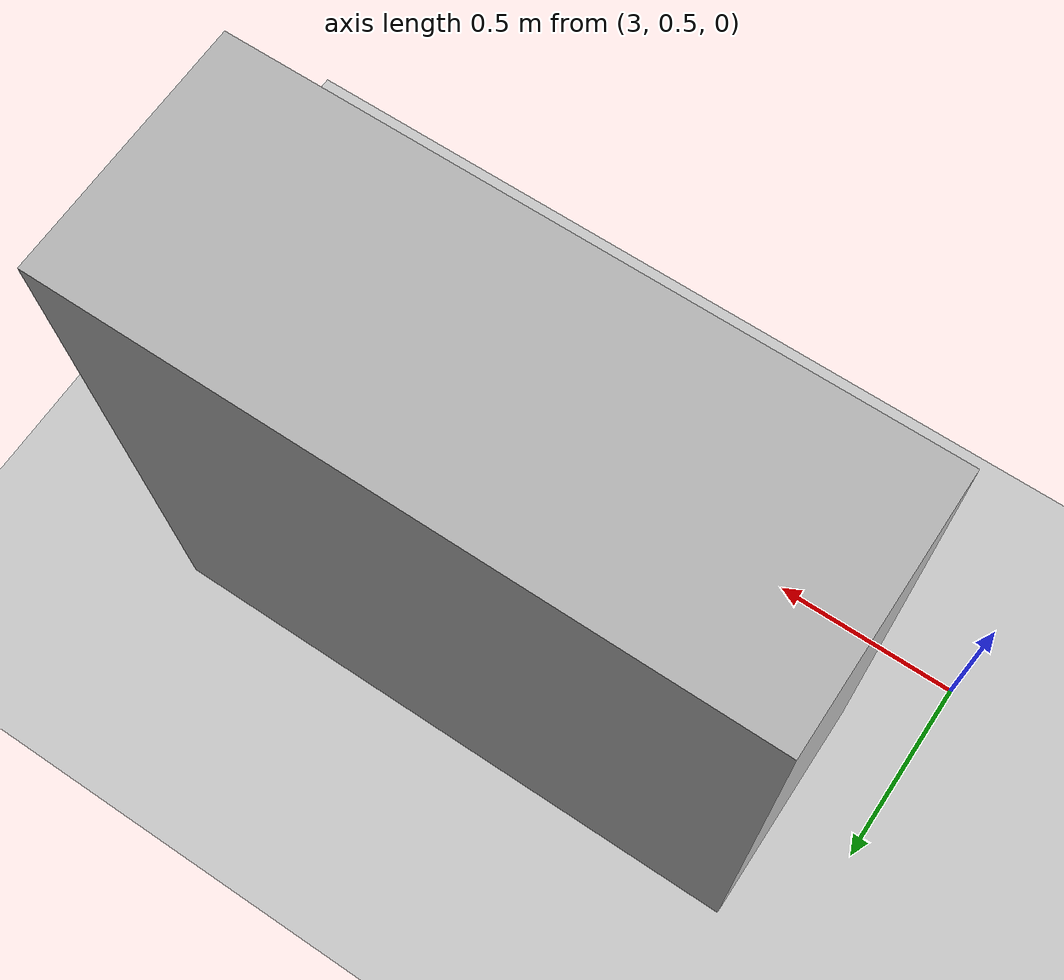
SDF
<?xml version="1.0"?>
<sdf version="1.9"><world name="classroom_corridor"><plugin filename="gz-sim-physics-system" name="gz::sim::systems::Physics"/><plugin filename="gz-sim-scene-broadcaster-system" name="gz::sim::systems::SceneBroadcaster"/><include><uri>model://sun</uri></include><include><uri>model://ground_plane</uri></include><model name="student_group"><static>true</static><pose>4 1.0 0.8 0 0 0</pose><link name="link"><collision name="c"><geometry><box><size>1.6 0.6 1.6</size></box></geometry></collision><visual name="v"><geometry><box><size>1.6 0.6 1.6</size></box></geometry></visual></link></model></world></sdf>
